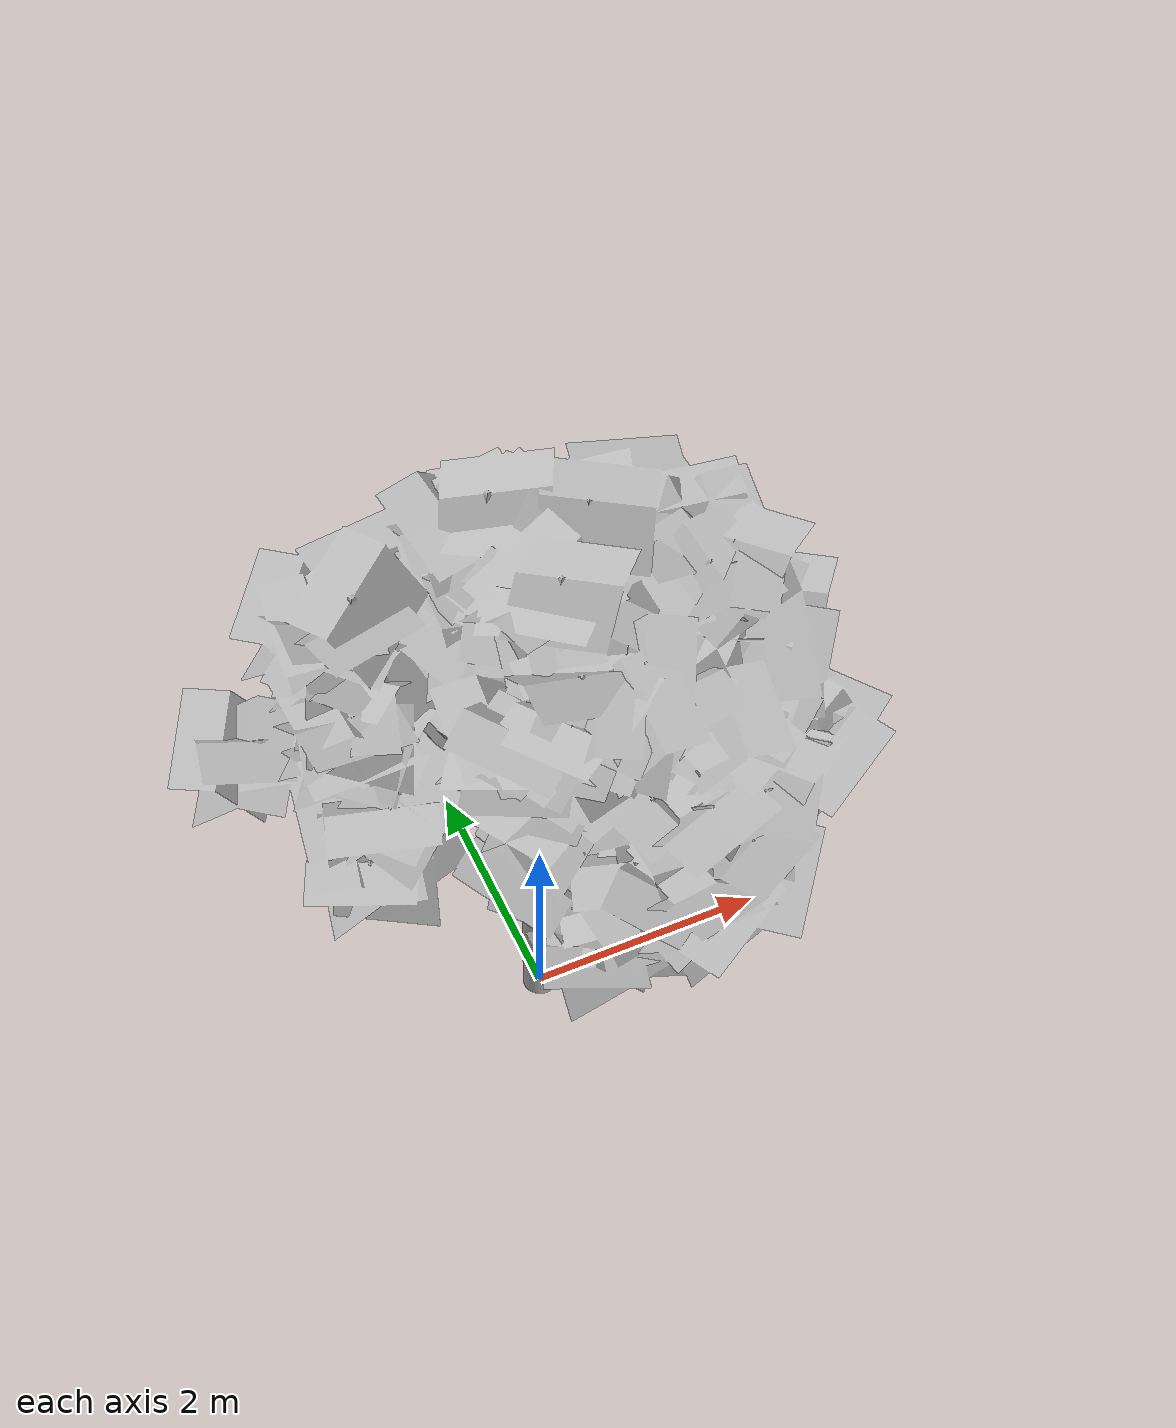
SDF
<?xml version="1.0" ?>
<sdf version="1.6">
  <model name="world_jean_tree">
    <static>true</static>
    <link name="link">
      <collision name="collision">
        <pose>0 0 1.0 0 0 0</pose>
        <geometry>
          <cylinder>
            <radius>0.22</radius>
            <length>2.0</length>
          </cylinder>
        </geometry>
      </collision>
      <visual name="visual">
        <geometry>
          <mesh>
            <uri>model://world_jean_tree/meshes/world_jean_tree.obj</uri>
            <scale>1 1 1</scale>
          </mesh>
        </geometry>
      </visual>
    </link>
  </model>
</sdf>
